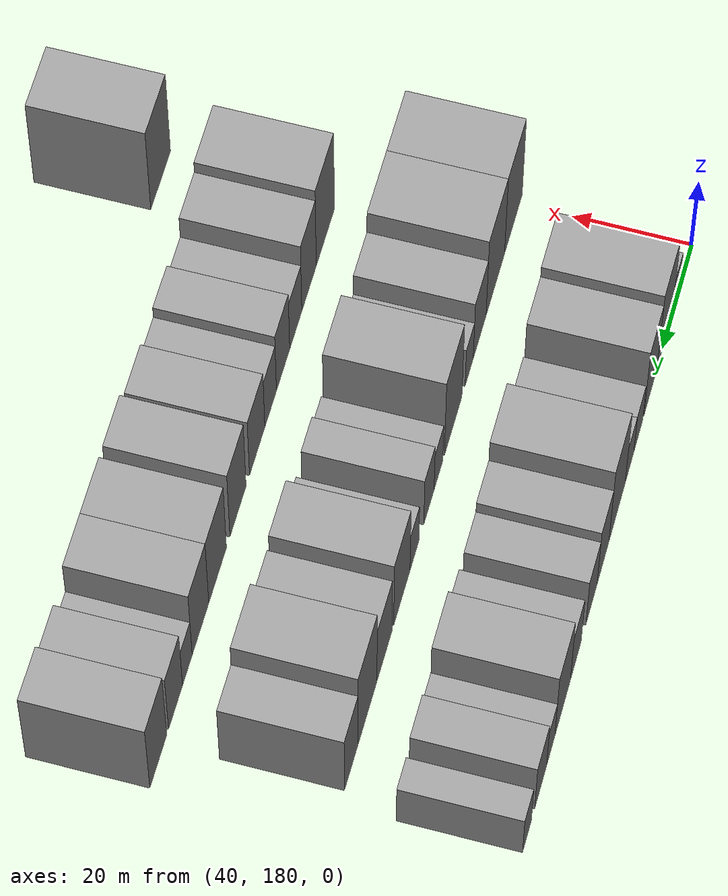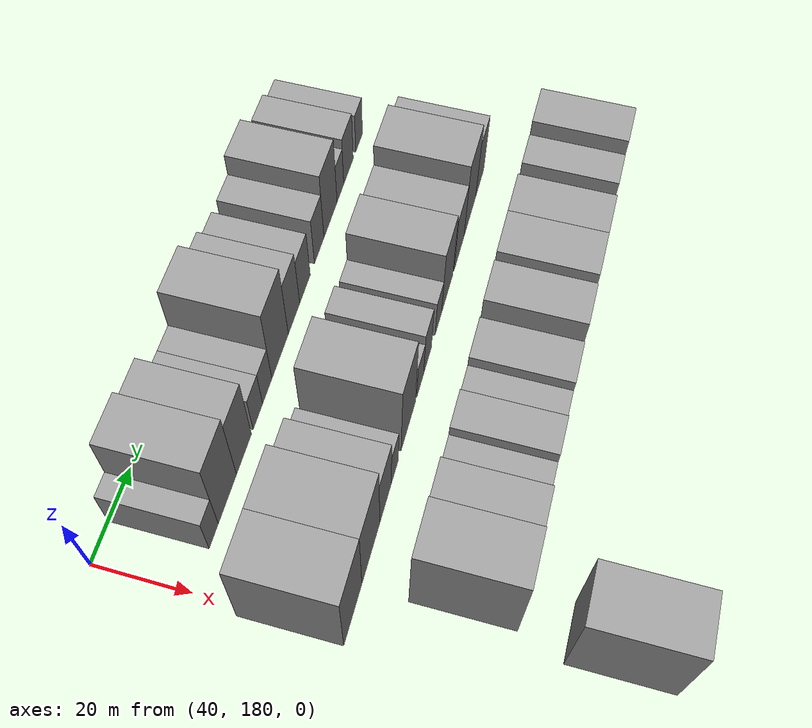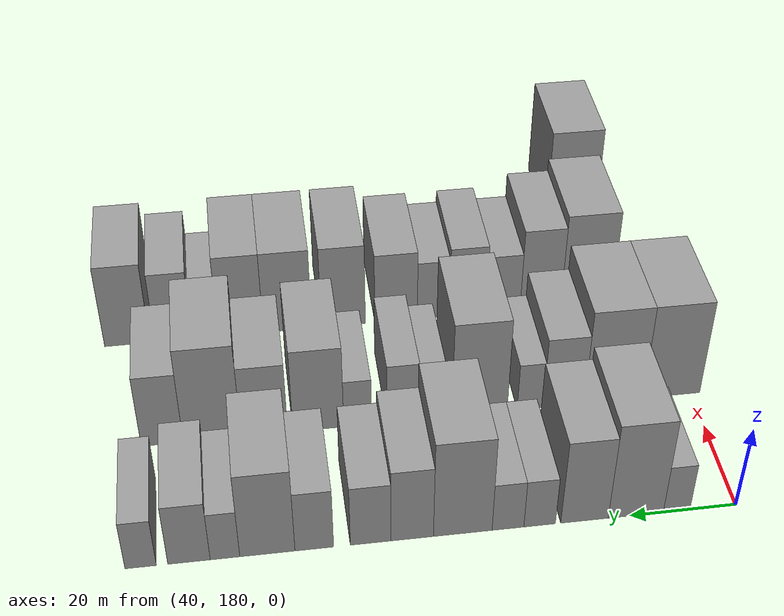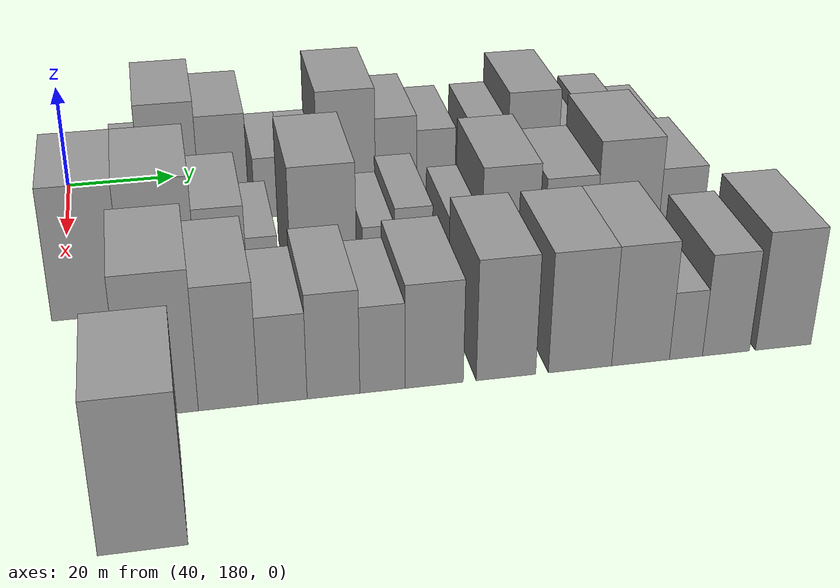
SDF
<sdf version="1.6">
 <world name="default">
  <model name="building_78">
   <static>1</static>
   <pose>50.0000 191.1960 0 0.000000 0.000000 0.000000</pose>
   <link name="link">
    <pose>0 0 6.00 0 0 0</pose>
    <collision name="collision"><geometry><box><size>20.0000 5.0096 12.0000</size></box></geometry></collision>
    <visual name="visual">
     <cast_shadows>0</cast_shadows>
     <geometry><box><size>20.0000 5.0096 12.0000</size></box></geometry>
     <material>
      <script>
       <uri>model://grey_wall/materials/scripts</uri>
       <uri>model://grey_wall/materials/textures</uri>
       <name>vrc/grey_wall</name>
      </script>
     </material>
    </visual>
   </link>
  </model>
  <model name="building_79">
   <static>1</static>
   <pose>50.0000 198.8575 0 0.000000 0.000000 0.000000</pose>
   <link name="link">
    <pose>0 0 12.00 0 0 0</pose>
    <collision name="collision"><geometry><box><size>20.0000 10.3134 24.0000</size></box></geometry></collision>
    <visual name="visual">
     <cast_shadows>0</cast_shadows>
     <geometry><box><size>20.0000 10.3134 24.0000</size></box></geometry>
     <material>
      <script>
       <uri>model://grey_wall/materials/scripts</uri>
       <uri>model://grey_wall/materials/textures</uri>
       <name>vrc/grey_wall</name>
      </script>
     </material>
    </visual>
   </link>
  </model>
  <model name="building_80">
   <static>1</static>
   <pose>50.0000 208.4200 0 0.000000 0.000000 0.000000</pose>
   <link name="link">
    <pose>0 0 10.50 0 0 0</pose>
    <collision name="collision"><geometry><box><size>20.0000 8.8116 21.0000</size></box></geometry></collision>
    <visual name="visual">
     <cast_shadows>0</cast_shadows>
     <geometry><box><size>20.0000 8.8116 21.0000</size></box></geometry>
     <material>
      <script>
       <uri>model://grey_wall/materials/scripts</uri>
       <uri>model://grey_wall/materials/textures</uri>
       <name>vrc/grey_wall</name>
      </script>
     </material>
    </visual>
   </link>
  </model>
  <model name="building_81">
   <static>1</static>
   <pose>50.0000 216.7324 0 0.000000 0.000000 0.000000</pose>
   <link name="link">
    <pose>0 0 6.00 0 0 0</pose>
    <collision name="collision"><geometry><box><size>20.0000 5.8131 12.0000</size></box></geometry></collision>
    <visual name="visual">
     <cast_shadows>0</cast_shadows>
     <geometry><box><size>20.0000 5.8131 12.0000</size></box></geometry>
     <material>
      <script>
       <uri>model://grey_wall/materials/scripts</uri>
       <uri>model://grey_wall/materials/textures</uri>
       <name>vrc/grey_wall</name>
      </script>
     </material>
    </visual>
   </link>
  </model>
  <model name="building_82">
   <static>1</static>
   <pose>50.0000 222.5530 0 0.000000 0.000000 0.000000</pose>
   <link name="link">
    <pose>0 0 6.00 0 0 0</pose>
    <collision name="collision"><geometry><box><size>20.0000 5.8281 12.0000</size></box></geometry></collision>
    <visual name="visual">
     <cast_shadows>0</cast_shadows>
     <geometry><box><size>20.0000 5.8281 12.0000</size></box></geometry>
     <material>
      <script>
       <uri>model://grey_wall/materials/scripts</uri>
       <uri>model://grey_wall/materials/textures</uri>
       <name>vrc/grey_wall</name>
      </script>
     </material>
    </visual>
   </link>
  </model>
  <model name="building_83">
   <static>1</static>
   <pose>50.0000 230.8259 0 0.000000 0.000000 0.000000</pose>
   <link name="link">
    <pose>0 0 12.00 0 0 0</pose>
    <collision name="collision"><geometry><box><size>20.0000 10.7177 24.0000</size></box></geometry></collision>
    <visual name="visual">
     <cast_shadows>0</cast_shadows>
     <geometry><box><size>20.0000 10.7177 24.0000</size></box></geometry>
     <material>
      <script>
       <uri>model://grey_wall/materials/scripts</uri>
       <uri>model://grey_wall/materials/textures</uri>
       <name>vrc/grey_wall</name>
      </script>
     </material>
    </visual>
   </link>
  </model>
  <model name="building_84">
   <static>1</static>
   <pose>50.0000 240.0393 0 0.000000 0.000000 0.000000</pose>
   <link name="link">
    <pose>0 0 9.00 0 0 0</pose>
    <collision name="collision"><geometry><box><size>20.0000 7.7092 18.0000</size></box></geometry></collision>
    <visual name="visual">
     <cast_shadows>0</cast_shadows>
     <geometry><box><size>20.0000 7.7092 18.0000</size></box></geometry>
     <material>
      <script>
       <uri>model://grey_wall/materials/scripts</uri>
       <uri>model://grey_wall/materials/textures</uri>
       <name>vrc/grey_wall</name>
      </script>
     </material>
    </visual>
   </link>
  </model>
  <model name="building_85">
   <static>1</static>
   <pose>50.0000 247.5469 0 0.000000 0.000000 0.000000</pose>
   <link name="link">
    <pose>0 0 7.50 0 0 0</pose>
    <collision name="collision"><geometry><box><size>20.0000 7.3059 15.0000</size></box></geometry></collision>
    <visual name="visual">
     <cast_shadows>0</cast_shadows>
     <geometry><box><size>20.0000 7.3059 15.0000</size></box></geometry>
     <material>
      <script>
       <uri>model://grey_wall/materials/scripts</uri>
       <uri>model://grey_wall/materials/textures</uri>
       <name>vrc/grey_wall</name>
      </script>
     </material>
    </visual>
   </link>
  </model>
  <model name="building_86">
   <static>1</static>
   <pose>50.0000 257.6532 0 0.000000 0.000000 0.000000</pose>
   <link name="link">
    <pose>0 0 7.50 0 0 0</pose>
    <collision name="collision"><geometry><box><size>20.0000 6.9068 15.0000</size></box></geometry></collision>
    <visual name="visual">
     <cast_shadows>0</cast_shadows>
     <geometry><box><size>20.0000 6.9068 15.0000</size></box></geometry>
     <material>
      <script>
       <uri>model://grey_wall/materials/scripts</uri>
       <uri>model://grey_wall/materials/textures</uri>
       <name>vrc/grey_wall</name>
      </script>
     </material>
    </visual>
   </link>
  </model>
  <model name="building_87">
   <static>1</static>
   <pose>50.0000 266.0132 0 0.000000 0.000000 0.000000</pose>
   <link name="link">
    <pose>0 0 10.50 0 0 0</pose>
    <collision name="collision"><geometry><box><size>20.0000 9.8132 21.0000</size></box></geometry></collision>
    <visual name="visual">
     <cast_shadows>0</cast_shadows>
     <geometry><box><size>20.0000 9.8132 21.0000</size></box></geometry>
     <material>
      <script>
       <uri>model://grey_wall/materials/scripts</uri>
       <uri>model://grey_wall/materials/textures</uri>
       <name>vrc/grey_wall</name>
      </script>
     </material>
    </visual>
   </link>
  </model>
  <model name="building_88">
   <static>1</static>
   <pose>50.0000 273.5310 0 0.000000 0.000000 0.000000</pose>
   <link name="link">
    <pose>0 0 6.00 0 0 0</pose>
    <collision name="collision"><geometry><box><size>20.0000 5.2224 12.0000</size></box></geometry></collision>
    <visual name="visual">
     <cast_shadows>0</cast_shadows>
     <geometry><box><size>20.0000 5.2224 12.0000</size></box></geometry>
     <material>
      <script>
       <uri>model://grey_wall/materials/scripts</uri>
       <uri>model://grey_wall/materials/textures</uri>
       <name>vrc/grey_wall</name>
      </script>
     </material>
    </visual>
   </link>
  </model>
  <model name="building_89">
   <static>1</static>
   <pose>50.0000 279.8718 0 0.000000 0.000000 0.000000</pose>
   <link name="link">
    <pose>0 0 7.50 0 0 0</pose>
    <collision name="collision"><geometry><box><size>20.0000 7.4591 15.0000</size></box></geometry></collision>
    <visual name="visual">
     <cast_shadows>0</cast_shadows>
     <geometry><box><size>20.0000 7.4591 15.0000</size></box></geometry>
     <material>
      <script>
       <uri>model://grey_wall/materials/scripts</uri>
       <uri>model://grey_wall/materials/textures</uri>
       <name>vrc/grey_wall</name>
      </script>
     </material>
    </visual>
   </link>
  </model>
  <model name="building_90">
   <static>1</static>
   <pose>50.0000 288.3421 0 0.000000 0.000000 0.000000</pose>
   <link name="link">
    <pose>0 0 6.00 0 0 0</pose>
    <collision name="collision"><geometry><box><size>20.0000 5.4815 12.0000</size></box></geometry></collision>
    <visual name="visual">
     <cast_shadows>0</cast_shadows>
     <geometry><box><size>20.0000 5.4815 12.0000</size></box></geometry>
     <material>
      <script>
       <uri>model://grey_wall/materials/scripts</uri>
       <uri>model://grey_wall/materials/textures</uri>
       <name>vrc/grey_wall</name>
      </script>
     </material>
    </visual>
   </link>
  </model>
  <model name="building_182">
   <static>1</static>
   <pose>79.0000 183.9494 0 0.000000 0.000000 0.000000</pose>
   <link name="link">
    <pose>0 0 12.00 0 0 0</pose>
    <collision name="collision"><geometry><box><size>20.0000 11.5588 24.0000</size></box></geometry></collision>
    <visual name="visual">
     <cast_shadows>0</cast_shadows>
     <geometry><box><size>20.0000 11.5588 24.0000</size></box></geometry>
     <material>
      <script>
       <uri>model://grey_wall/materials/scripts</uri>
       <uri>model://grey_wall/materials/textures</uri>
       <name>vrc/grey_wall</name>
      </script>
     </material>
    </visual>
   </link>
  </model>
  <model name="building_183">
   <static>1</static>
   <pose>79.0000 195.7155 0 0.000000 0.000000 0.000000</pose>
   <link name="link">
    <pose>0 0 12.00 0 0 0</pose>
    <collision name="collision"><geometry><box><size>20.0000 11.9734 24.0000</size></box></geometry></collision>
    <visual name="visual">
     <cast_shadows>0</cast_shadows>
     <geometry><box><size>20.0000 11.9734 24.0000</size></box></geometry>
     <material>
      <script>
       <uri>model://grey_wall/materials/scripts</uri>
       <uri>model://grey_wall/materials/textures</uri>
       <name>vrc/grey_wall</name>
      </script>
     </material>
    </visual>
   </link>
  </model>
  <model name="building_184">
   <static>1</static>
   <pose>79.0000 205.8262 0 0.000000 0.000000 0.000000</pose>
   <link name="link">
    <pose>0 0 9.00 0 0 0</pose>
    <collision name="collision"><geometry><box><size>20.0000 8.2482 18.0000</size></box></geometry></collision>
    <visual name="visual">
     <cast_shadows>0</cast_shadows>
     <geometry><box><size>20.0000 8.2482 18.0000</size></box></geometry>
     <material>
      <script>
       <uri>model://grey_wall/materials/scripts</uri>
       <uri>model://grey_wall/materials/textures</uri>
       <name>vrc/grey_wall</name>
      </script>
     </material>
    </visual>
   </link>
  </model>
  <model name="building_185">
   <static>1</static>
   <pose>79.0000 212.5347 0 0.000000 0.000000 0.000000</pose>
   <link name="link">
    <pose>0 0 6.00 0 0 0</pose>
    <collision name="collision"><geometry><box><size>20.0000 5.1687 12.0000</size></box></geometry></collision>
    <visual name="visual">
     <cast_shadows>0</cast_shadows>
     <geometry><box><size>20.0000 5.1687 12.0000</size></box></geometry>
     <material>
      <script>
       <uri>model://grey_wall/materials/scripts</uri>
       <uri>model://grey_wall/materials/textures</uri>
       <name>vrc/grey_wall</name>
      </script>
     </material>
    </visual>
   </link>
  </model>
  <model name="building_186">
   <static>1</static>
   <pose>79.0000 222.6134 0 0.000000 0.000000 0.000000</pose>
   <link name="link">
    <pose>0 0 12.00 0 0 0</pose>
    <collision name="collision"><geometry><box><size>20.0000 10.9888 24.0000</size></box></geometry></collision>
    <visual name="visual">
     <cast_shadows>0</cast_shadows>
     <geometry><box><size>20.0000 10.9888 24.0000</size></box></geometry>
     <material>
      <script>
       <uri>model://grey_wall/materials/scripts</uri>
       <uri>model://grey_wall/materials/textures</uri>
       <name>vrc/grey_wall</name>
      </script>
     </material>
    </visual>
   </link>
  </model>
  <model name="building_187">
   <static>1</static>
   <pose>79.0000 231.8289 0 0.000000 0.000000 0.000000</pose>
   <link name="link">
    <pose>0 0 6.00 0 0 0</pose>
    <collision name="collision"><geometry><box><size>20.0000 5.4422 12.0000</size></box></geometry></collision>
    <visual name="visual">
     <cast_shadows>0</cast_shadows>
     <geometry><box><size>20.0000 5.4422 12.0000</size></box></geometry>
     <material>
      <script>
       <uri>model://grey_wall/materials/scripts</uri>
       <uri>model://grey_wall/materials/textures</uri>
       <name>vrc/grey_wall</name>
      </script>
     </material>
    </visual>
   </link>
  </model>
  <model name="building_188">
   <static>1</static>
   <pose>79.0000 237.7253 0 0.000000 0.000000 0.000000</pose>
   <link name="link">
    <pose>0 0 7.50 0 0 0</pose>
    <collision name="collision"><geometry><box><size>20.0000 6.3506 15.0000</size></box></geometry></collision>
    <visual name="visual">
     <cast_shadows>0</cast_shadows>
     <geometry><box><size>20.0000 6.3506 15.0000</size></box></geometry>
     <material>
      <script>
       <uri>model://grey_wall/materials/scripts</uri>
       <uri>model://grey_wall/materials/textures</uri>
       <name>vrc/grey_wall</name>
      </script>
     </material>
    </visual>
   </link>
  </model>
  <model name="building_189">
   <static>1</static>
   <pose>79.0000 246.6190 0 0.000000 0.000000 0.000000</pose>
   <link name="link">
    <pose>0 0 6.00 0 0 0</pose>
    <collision name="collision"><geometry><box><size>20.0000 5.4369 12.0000</size></box></geometry></collision>
    <visual name="visual">
     <cast_shadows>0</cast_shadows>
     <geometry><box><size>20.0000 5.4369 12.0000</size></box></geometry>
     <material>
      <script>
       <uri>model://grey_wall/materials/scripts</uri>
       <uri>model://grey_wall/materials/textures</uri>
       <name>vrc/grey_wall</name>
      </script>
     </material>
    </visual>
   </link>
  </model>
  <model name="building_190">
   <static>1</static>
   <pose>79.0000 254.2797 0 0.000000 0.000000 0.000000</pose>
   <link name="link">
    <pose>0 0 10.50 0 0 0</pose>
    <collision name="collision"><geometry><box><size>20.0000 9.8844 21.0000</size></box></geometry></collision>
    <visual name="visual">
     <cast_shadows>0</cast_shadows>
     <geometry><box><size>20.0000 9.8844 21.0000</size></box></geometry>
     <material>
      <script>
       <uri>model://grey_wall/materials/scripts</uri>
       <uri>model://grey_wall/materials/textures</uri>
       <name>vrc/grey_wall</name>
      </script>
     </material>
    </visual>
   </link>
  </model>
  <model name="building_191">
   <static>1</static>
   <pose>79.0000 264.7175 0 0.000000 0.000000 0.000000</pose>
   <link name="link">
    <pose>0 0 9.00 0 0 0</pose>
    <collision name="collision"><geometry><box><size>20.0000 8.9913 18.0000</size></box></geometry></collision>
    <visual name="visual">
     <cast_shadows>0</cast_shadows>
     <geometry><box><size>20.0000 8.9913 18.0000</size></box></geometry>
     <material>
      <script>
       <uri>model://grey_wall/materials/scripts</uri>
       <uri>model://grey_wall/materials/textures</uri>
       <name>vrc/grey_wall</name>
      </script>
     </material>
    </visual>
   </link>
  </model>
  <model name="building_192">
   <static>1</static>
   <pose>79.0000 274.7590 0 0.000000 0.000000 0.000000</pose>
   <link name="link">
    <pose>0 0 12.00 0 0 0</pose>
    <collision name="collision"><geometry><box><size>20.0000 11.0916 24.0000</size></box></geometry></collision>
    <visual name="visual">
     <cast_shadows>0</cast_shadows>
     <geometry><box><size>20.0000 11.0916 24.0000</size></box></geometry>
     <material>
      <script>
       <uri>model://grey_wall/materials/scripts</uri>
       <uri>model://grey_wall/materials/textures</uri>
       <name>vrc/grey_wall</name>
      </script>
     </material>
    </visual>
   </link>
  </model>
  <model name="building_193">
   <static>1</static>
   <pose>79.0000 284.3001 0 0.000000 0.000000 0.000000</pose>
   <link name="link">
    <pose>0 0 9.00 0 0 0</pose>
    <collision name="collision"><geometry><box><size>20.0000 7.9905 18.0000</size></box></geometry></collision>
    <visual name="visual">
     <cast_shadows>0</cast_shadows>
     <geometry><box><size>20.0000 7.9905 18.0000</size></box></geometry>
     <material>
      <script>
       <uri>model://grey_wall/materials/scripts</uri>
       <uri>model://grey_wall/materials/textures</uri>
       <name>vrc/grey_wall</name>
      </script>
     </material>
    </visual>
   </link>
  </model>
  <model name="building_298">
   <static>1</static>
   <pose>108.0000 194.4255 0 0.000000 0.000000 0.000000</pose>
   <link name="link">
    <pose>0 0 12.00 0 0 0</pose>
    <collision name="collision"><geometry><box><size>20.0000 11.0891 24.0000</size></box></geometry></collision>
    <visual name="visual">
     <cast_shadows>0</cast_shadows>
     <geometry><box><size>20.0000 11.0891 24.0000</size></box></geometry>
     <material>
      <script>
       <uri>model://grey_wall/materials/scripts</uri>
       <uri>model://grey_wall/materials/textures</uri>
       <name>vrc/grey_wall</name>
      </script>
     </material>
    </visual>
   </link>
  </model>
  <model name="building_299">
   <static>1</static>
   <pose>108.0000 204.3585 0 0.000000 0.000000 0.000000</pose>
   <link name="link">
    <pose>0 0 10.50 0 0 0</pose>
    <collision name="collision"><geometry><box><size>20.0000 8.7770 21.0000</size></box></geometry></collision>
    <visual name="visual">
     <cast_shadows>0</cast_shadows>
     <geometry><box><size>20.0000 8.7770 21.0000</size></box></geometry>
     <material>
      <script>
       <uri>model://grey_wall/materials/scripts</uri>
       <uri>model://grey_wall/materials/textures</uri>
       <name>vrc/grey_wall</name>
      </script>
     </material>
    </visual>
   </link>
  </model>
  <model name="building_300">
   <static>1</static>
   <pose>108.0000 212.3759 0 0.000000 0.000000 0.000000</pose>
   <link name="link">
    <pose>0 0 7.50 0 0 0</pose>
    <collision name="collision"><geometry><box><size>20.0000 7.2579 15.0000</size></box></geometry></collision>
    <visual name="visual">
     <cast_shadows>0</cast_shadows>
     <geometry><box><size>20.0000 7.2579 15.0000</size></box></geometry>
     <material>
      <script>
       <uri>model://grey_wall/materials/scripts</uri>
       <uri>model://grey_wall/materials/textures</uri>
       <name>vrc/grey_wall</name>
      </script>
     </material>
    </visual>
   </link>
  </model>
  <model name="building_301">
   <static>1</static>
   <pose>108.0000 219.9621 0 0.000000 0.000000 0.000000</pose>
   <link name="link">
    <pose>0 0 9.00 0 0 0</pose>
    <collision name="collision"><geometry><box><size>20.0000 7.9144 18.0000</size></box></geometry></collision>
    <visual name="visual">
     <cast_shadows>0</cast_shadows>
     <geometry><box><size>20.0000 7.9144 18.0000</size></box></geometry>
     <material>
      <script>
       <uri>model://grey_wall/materials/scripts</uri>
       <uri>model://grey_wall/materials/textures</uri>
       <name>vrc/grey_wall</name>
      </script>
     </material>
    </visual>
   </link>
  </model>
  <model name="building_302">
   <static>1</static>
   <pose>108.0000 227.3372 0 0.000000 0.000000 0.000000</pose>
   <link name="link">
    <pose>0 0 7.50 0 0 0</pose>
    <collision name="collision"><geometry><box><size>20.0000 6.8358 15.0000</size></box></geometry></collision>
    <visual name="visual">
     <cast_shadows>0</cast_shadows>
     <geometry><box><size>20.0000 6.8358 15.0000</size></box></geometry>
     <material>
      <script>
       <uri>model://grey_wall/materials/scripts</uri>
       <uri>model://grey_wall/materials/textures</uri>
       <name>vrc/grey_wall</name>
      </script>
     </material>
    </visual>
   </link>
  </model>
  <model name="building_303">
   <static>1</static>
   <pose>108.0000 235.2460 0 0.000000 0.000000 0.000000</pose>
   <link name="link">
    <pose>0 0 9.00 0 0 0</pose>
    <collision name="collision"><geometry><box><size>20.0000 8.9817 18.0000</size></box></geometry></collision>
    <visual name="visual">
     <cast_shadows>0</cast_shadows>
     <geometry><box><size>20.0000 8.9817 18.0000</size></box></geometry>
     <material>
      <script>
       <uri>model://grey_wall/materials/scripts</uri>
       <uri>model://grey_wall/materials/textures</uri>
       <name>vrc/grey_wall</name>
      </script>
     </material>
    </visual>
   </link>
  </model>
  <model name="building_304">
   <static>1</static>
   <pose>108.0000 246.3879 0 0.000000 0.000000 0.000000</pose>
   <link name="link">
    <pose>0 0 10.50 0 0 0</pose>
    <collision name="collision"><geometry><box><size>20.0000 9.3022 21.0000</size></box></geometry></collision>
    <visual name="visual">
     <cast_shadows>0</cast_shadows>
     <geometry><box><size>20.0000 9.3022 21.0000</size></box></geometry>
     <material>
      <script>
       <uri>model://grey_wall/materials/scripts</uri>
       <uri>model://grey_wall/materials/textures</uri>
       <name>vrc/grey_wall</name>
      </script>
     </material>
    </visual>
   </link>
  </model>
  <model name="building_305">
   <static>1</static>
   <pose>108.0000 258.0661 0 0.000000 0.000000 0.000000</pose>
   <link name="link">
    <pose>0 0 10.50 0 0 0</pose>
    <collision name="collision"><geometry><box><size>20.0000 10.0541 21.0000</size></box></geometry></collision>
    <visual name="visual">
     <cast_shadows>0</cast_shadows>
     <geometry><box><size>20.0000 10.0541 21.0000</size></box></geometry>
     <material>
      <script>
       <uri>model://grey_wall/materials/scripts</uri>
       <uri>model://grey_wall/materials/textures</uri>
       <name>vrc/grey_wall</name>
      </script>
     </material>
    </visual>
   </link>
  </model>
  <model name="building_306">
   <static>1</static>
   <pose>108.0000 267.7663 0 0.000000 0.000000 0.000000</pose>
   <link name="link">
    <pose>0 0 10.50 0 0 0</pose>
    <collision name="collision"><geometry><box><size>20.0000 9.3463 21.0000</size></box></geometry></collision>
    <visual name="visual">
     <cast_shadows>0</cast_shadows>
     <geometry><box><size>20.0000 9.3463 21.0000</size></box></geometry>
     <material>
      <script>
       <uri>model://grey_wall/materials/scripts</uri>
       <uri>model://grey_wall/materials/textures</uri>
       <name>vrc/grey_wall</name>
      </script>
     </material>
    </visual>
   </link>
  </model>
  <model name="building_307">
   <static>1</static>
   <pose>108.0000 275.1324 0 0.000000 0.000000 0.000000</pose>
   <link name="link">
    <pose>0 0 6.00 0 0 0</pose>
    <collision name="collision"><geometry><box><size>20.0000 5.3858 12.0000</size></box></geometry></collision>
    <visual name="visual">
     <cast_shadows>0</cast_shadows>
     <geometry><box><size>20.0000 5.3858 12.0000</size></box></geometry>
     <material>
      <script>
       <uri>model://grey_wall/materials/scripts</uri>
       <uri>model://grey_wall/materials/textures</uri>
       <name>vrc/grey_wall</name>
      </script>
     </material>
    </visual>
   </link>
  </model>
  <model name="building_308">
   <static>1</static>
   <pose>108.0000 281.6903 0 0.000000 0.000000 0.000000</pose>
   <link name="link">
    <pose>0 0 9.00 0 0 0</pose>
    <collision name="collision"><geometry><box><size>20.0000 7.7300 18.0000</size></box></geometry></collision>
    <visual name="visual">
     <cast_shadows>0</cast_shadows>
     <geometry><box><size>20.0000 7.7300 18.0000</size></box></geometry>
     <material>
      <script>
       <uri>model://grey_wall/materials/scripts</uri>
       <uri>model://grey_wall/materials/textures</uri>
       <name>vrc/grey_wall</name>
      </script>
     </material>
    </visual>
   </link>
  </model>
  <model name="building_309">
   <static>1</static>
   <pose>108.0000 291.1767 0 0.000000 0.000000 0.000000</pose>
   <link name="link">
    <pose>0 0 10.50 0 0 0</pose>
    <collision name="collision"><geometry><box><size>20.0000 9.2430 21.0000</size></box></geometry></collision>
    <visual name="visual">
     <cast_shadows>0</cast_shadows>
     <geometry><box><size>20.0000 9.2430 21.0000</size></box></geometry>
     <material>
      <script>
       <uri>model://grey_wall/materials/scripts</uri>
       <uri>model://grey_wall/materials/textures</uri>
       <name>vrc/grey_wall</name>
      </script>
     </material>
    </visual>
   </link>
  </model>
  <model name="building_401">
   <static>1</static>
   <pose>137.0000 191.1265 0 0.000000 0.000000 0.000000</pose>
   <link name="link">
    <pose>0 0 12.00 0 0 0</pose>
    <collision name="collision"><geometry><box><size>20.0000 11.5024 24.0000</size></box></geometry></collision>
    <visual name="visual">
     <cast_shadows>0</cast_shadows>
     <geometry><box><size>20.0000 11.5024 24.0000</size></box></geometry>
     <material>
      <script>
       <uri>model://grey_wall/materials/scripts</uri>
       <uri>model://grey_wall/materials/textures</uri>
       <name>vrc/grey_wall</name>
      </script>
     </material>
    </visual>
   </link>
  </model>
 </world>
</sdf>
